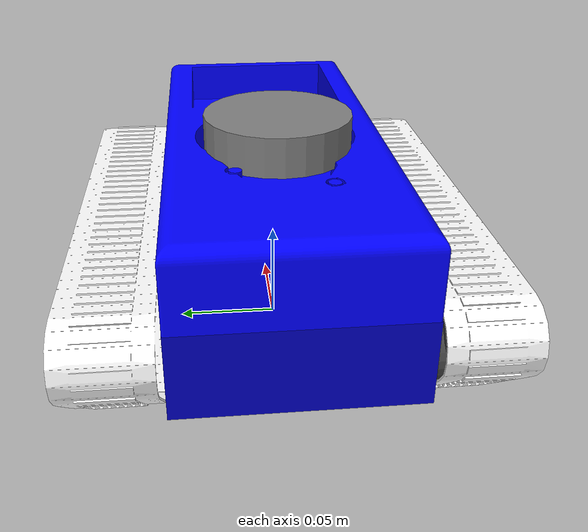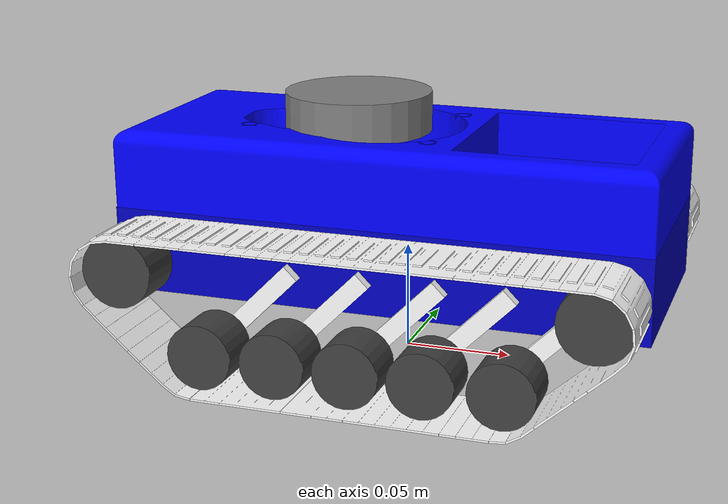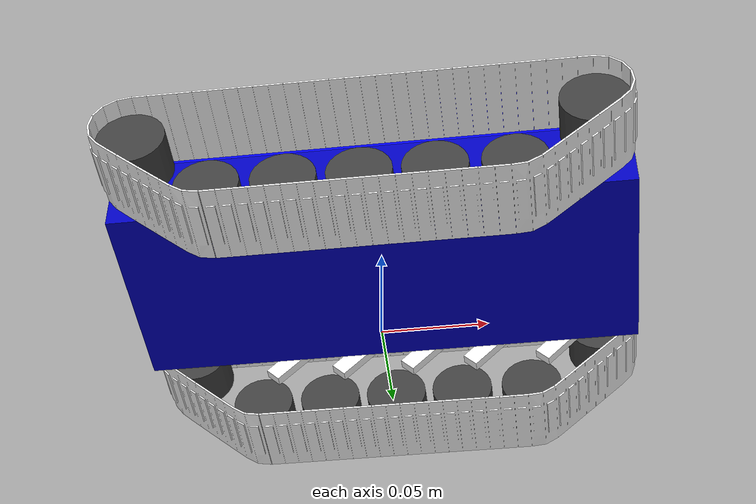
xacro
<?xml version="1.0"?>
<robot name="uwaba_prototype_diffbot" version="1.0"
  xmlns:xacro="http://www.ros.org/wiki/xacro">

  <material name="wheels-grey">
    <color rgba="0.25 0.25 0.25 1.00000" />
  </material>

  <material name="lidar-darkgrey">
    <color rgba="0.5 0.5 0.5 1.00000" />
  </material>

  <material name="base-blue">
    <color rgba="0 0 0.75 1.00000" />
  </material>

  <material name="support-babyblue">
    <color rgba="0.0 0.0 1.0 1.00000" />
  </material>

  <material name="suspension-black">
    <color rgba="1.0 1.0 1.0 1.00000" />
  </material>

  <material name="threads-black">
    <color rgba="1.0 1.0 1.0 0.95000" />
  </material>

  <joint name="Left_sprocket_base_joint" type="continuous">
    <limit lower="-3.14" upper="3.14" effort="0.0000000000" velocity="0.0000000000" />
    <origin rpy="0.0000000000 0.0000000000 0.0000000000"
      xyz="-0.1065520449 0.0762500119 0.0002469979" />
    <parent link="base_link" />
    <child link="Left_wheel_sprocket_link" />
    <axis xyz="0.0000000000 1.0000000000 0.0000000000" />
    <dynamics damping="0.2" />
    <limit effort="100" velocity="1.0" />
  </joint>

  <joint name="Left_suspension.001_base_joint" type="fixed">
    <origin rpy="0.0000000000 0.0000000000 0.0000000000"
      xyz="0.0515604214 0.0552990314 -0.0151900463" />
    <parent link="base_link" />
    <child link="Left_small_wheels_frame.001_link" />
    <axis xyz="0.0000000000 1.0000000000 0.0000000000" />
  </joint>

  <joint name="Left_suspension.002_base_joint" type="fixed">
    <origin rpy="0.0000000000 0.0000000000 0.0000000000"
      xyz="0.0197104206 0.0552989979 -0.0151902959" />
    <parent link="base_link" />
    <child link="Left_small_wheels_frame.002_link" />
    <axis xyz="0.0000000000 1.0000000000 0.0000000000" />
  </joint>

  <joint name="Left_suspension.003_base_joint" type="fixed">
    <origin rpy="0.0000000000 0.0000000000 0.0000000000"
      xyz="-0.0153435795 0.0552989904 -0.0151902996" />
    <parent link="base_link" />
    <child link="Left_small_wheels_frame.003_link" />
    <axis xyz="0.0000000000 1.0000000000 0.0000000000" />
  </joint>

  <joint name="Left_suspension.004_base_joint" type="fixed">
    <origin rpy="0.0000000000 0.0000000000 0.0000000000"
      xyz="-0.0490785828 0.0552990314 -0.0151903071" />
    <parent link="base_link" />
    <child link="Left_small_wheels_frame.004_link" />
    <axis xyz="0.0000000000 1.0000000000 0.0000000000" />
  </joint>

  <joint name="Left_suspension_base_joint" type="fixed">
    <origin rpy="0.0000000000 0.0000000000 0.0000000000"
      xyz="0.0879334183 0.0552990426 -0.0151902996" />
    <parent link="base_link" />
    <child link="Left_small_wheels_frame_link" />
    <axis xyz="0.0000000000 1.0000000000 0.0000000000" />
  </joint>

  <joint name="Left_tracks_base_joint" type="fixed">
    <origin rpy="0.0000000000 0.0000000000 0.0000000000"
      xyz="-0.0000073090 0.0762520012 -0.0125610121" />
    <parent link="base_link" />
    <child link="Left_bumped_treads_link" />
  </joint>

  <joint name="Left_wheel.001_suspension_joint" type="fixed">
    <origin rpy="-0.0000000000 0.0000000000 0.0000000000"
      xyz="-0.0191554390 0.0209509283 -0.0199896954" />
    <parent link="Left_small_wheels_frame.004_link" />
    <child link="Left_wheel.001_link" />
  </joint>

  <joint name="Left_wheel.002_suspension_joint" type="fixed">
    <origin rpy="-0.0000000000 0.0000000000 0.0000000000"
      xyz="-0.0184964389 0.0209509470 -0.0199897066" />
    <parent link="Left_small_wheels_frame.003_link" />
    <child link="Left_wheel.002_link" />
  </joint>

  <joint name="Left_wheel.003_suspension_joint" type="fixed">
    <origin rpy="-0.0000000000 0.0000000000 0.0000000000"
      xyz="-0.0197104495 0.0209509693 -0.0199897159" />
    <parent link="Left_small_wheels_frame.002_link" />
    <child link="Left_wheel.003_link" />
  </joint>

  <joint name="Left_wheel.004_suspension_joint" type="fixed">
    <origin rpy="-0.0000000000 0.0000000000 0.0000000000"
      xyz="-0.0179914646 0.0209509209 -0.0199899562" />
    <parent link="Left_small_wheels_frame.001_link" />
    <child link="Left_wheel.004_link" />
  </joint>

  <joint name="Left_wheel.005_suspension_joint" type="fixed">
    <origin rpy="-0.0000000000 0.0000000000 0.0000000000"
      xyz="-0.0192444250 0.0209509395 -0.0199897159" />
    <parent link="Left_small_wheels_frame_link" />
    <child link="Left_wheel.005_link" />
  </joint>

  <joint name="Left_wheel.006_base_joint" type="fixed">
    <origin rpy="0.0000000000 0.0000000000 0.0000000000"
      xyz="0.1065519945 0.0762500119 0.0002470016" />
    <parent link="base_link" />
    <child link="Left_wheel.006_link" />
  </joint>

  <joint name="Right_sprocket_base_joint" type="continuous">
    <limit lower="-3.14" upper="3.14" effort="0.0000000000" velocity="0.0000000000" />
    <origin rpy="0.0000000000 0.0000000000 0.0000000000"
      xyz="-0.1065520300 -0.0762500215 0.0002470128" />
    <parent link="base_link" />
    <child link="Right_wheel_sprocket_link" />
    <axis xyz="0.0000000000 1.0000000000 0.0000000000" />
    <dynamics damping="0.2" />
    <limit effort="100" velocity="1.0" />
  </joint>

  <joint name="Right_suspension.001_base_joint" type="fixed">
    <origin rpy="0.0000000000 0.0000000000 0.0000000000"
      xyz="0.0515604140 -0.0552989628 -0.0151902884" />
    <parent link="base_link" />
    <child link="Right_small_wheels_frame.001_link" />
    <axis xyz="0.0000000000 1.0000000000 0.0000000000" />
  </joint>

  <joint name="Right_suspension.002_base_joint" type="fixed">
    <origin rpy="0.0000000000 0.0000000000 0.0000000000"
      xyz="0.0197104187 -0.0552990224 -0.0151902996" />
    <parent link="base_link" />
    <child link="Right_small_wheels_frame.002_link" />
    <axis xyz="0.0000000000 1.0000000000 0.0000000000" />
  </joint>

  <joint name="Right_suspension.003_base_joint" type="fixed">
    <origin rpy="0.0000000000 0.0000000000 0.0000000000"
      xyz="-0.0153435786 -0.0552990075 -0.0151903033" />
    <parent link="base_link" />
    <child link="Right_small_wheels_frame.003_link" />
    <axis xyz="0.0000000000 1.0000000000 0.0000000000" />
  </joint>

  <joint name="Right_suspension.004_base_joint" type="fixed">
    <origin rpy="0.0000000000 0.0000000000 0.0000000000"
      xyz="-0.0490785791 -0.0552989665 -0.0151903071" />
    <parent link="base_link" />
    <child link="Right_small_wheels_frame.004_link" />
    <axis xyz="0.0000000000 1.0000000000 0.0000000000" />
  </joint>

  <joint name="Right_suspension_base_joint" type="fixed">
    <origin rpy="0.0000000000 0.0000000000 0.0000000000"
      xyz="0.0879334183 -0.0552989665 -0.0151903033" />
    <parent link="base_link" />
    <child link="Right_small_wheels_frame_link" />
    <axis xyz="0.0000000000 1.0000000000 0.0000000000" />
  </joint>

  <joint name="Right_tracks_base_joint" type="fixed">
    <origin rpy="0.0000000000 0.0000000000 0.0000000000"
      xyz="0.0000440089 -0.0765780109 -0.0125610270" />
    <parent link="base_link" />
    <child link="Right_bumped_treads_link" />
  </joint>

  <joint name="Right_wheel.001_suspension_joint" type="fixed">
    <origin rpy="0.0000000000 0.0000000000 0.0000000000"
      xyz="-0.0191554353 -0.0209510326 -0.0199897029" />
    <parent link="Right_small_wheels_frame.004_link" />
    <child link="Right_wheel.001_link" />
  </joint>

  <joint name="Right_wheel.002_suspension_joint" type="fixed">
    <origin rpy="0.0000000000 0.0000000000 0.0000000000"
      xyz="-0.0184964174 -0.0209510289 -0.0199897103" />
    <parent link="Right_small_wheels_frame.003_link" />
    <child link="Right_wheel.002_link" />
  </joint>

  <joint name="Right_wheel.003_suspension_joint" type="fixed">
    <origin rpy="0.0000000000 0.0000000000 0.0000000000"
      xyz="-0.0197104261 -0.0209509619 -0.0199897196" />
    <parent link="Right_small_wheels_frame.002_link" />
    <child link="Right_wheel.003_link" />
  </joint>

  <joint name="Right_wheel.004_suspension_joint" type="fixed">
    <origin rpy="0.0000000000 0.0000000000 0.0000000000"
      xyz="-0.0179914236 -0.0209510438 -0.0199897178" />
    <parent link="Right_small_wheels_frame.001_link" />
    <child link="Right_wheel.004_link" />
  </joint>

  <joint name="Right_wheel.005_suspension_joint" type="fixed">
    <origin rpy="0.0000000000 0.0000000000 0.0000000000"
      xyz="-0.0192444548 -0.0209510252 -0.0199896898" />
    <parent link="Right_small_wheels_frame_link" />
    <child link="Right_wheel.005_link" />
  </joint>

  <joint name="Right_wheel.006_base_joint" type="fixed">
    <origin rpy="0.0000000000 0.0000000000 0.0000000000"
      xyz="0.1065519945 -0.0762500066 0.0002470054" />
    <parent link="base_link" />
    <child link="Right_wheel.006_link" />
  </joint>

  <joint name="base_footprint_joint" type="fixed">
    <origin rpy="0.0000000000 0.0000000000 0.0000000000"
      xyz="0.0000000177 0.0000000048 0.0524450019" />
    <parent link="base_footprint" />
    <child link="base_link" />
  </joint>

  <joint name="imu_base_joint" type="fixed">
    <origin rpy="0.0000000000 0.0000000000 ${-pi/2}"
      xyz="0.061 -0.004 0.001875" />
      <!-- xyz="0.061 -0.004 0.001875" -->
    <parent link="base_link" />
    <child link="imu_frame" />
  </joint>

  <joint name="laser_frame_base_joint" type="fixed">
    <origin rpy="${pi} 0.0000000000 0.0000000000"
      xyz="-0.024 0.0000000000 0.061" />
      <!-- xyz="-0.0110695819 -0.0000000043 0.0737789795" -->
    <parent link="base_link" />
    <child link="laser_frame" />
  </joint>

  <joint name="support_base_joint" type="fixed">
    <origin rpy="0.0000000000 0.0000000000 0.0000000000"
      xyz="-0.0000000130 -0.0000003647 0.0193747655" />
    <parent link="base_link" />
    <child link="support_link" />
  </joint>

  <link name="Left_bumped_treads_link">
    <collision name="Left_bumped_treads_collision">
      <origin rpy="0.0000000000 0.0000000000 0.0000000000"
        xyz="0.0000002912 -0.0000000075 0.0000000112" />
      <geometry>
        <mesh filename="package://uwaba_prototype_description/meshes/dae/right.tracks.dae"
          scale="1.0000000000 1.0000000000 1.0000000000" />
      </geometry>
    </collision>

    <visual>
      <material name="threads-black" />
      <origin rpy="0.0000000000 0.0000000000 0.0000000000"
        xyz="0.0000002912 -0.0000000075 0.0000000000" />
      <geometry>
        <mesh filename="package://uwaba_prototype_description/meshes/dae/right.tracks.dae"
          scale="1.0000000000 1.0000000000 1.0000000000" />
      </geometry>
    </visual>

  </link>

  <link name="Left_small_wheels_frame.001_link">
    <collision name="Left_small_wheels_frame.001_collision">
      <origin rpy="0.0000000000 -0.7853982406 0.0000000000"
        xyz="-0.0084856115 0.0000000000 -0.0084856041" />
      <geometry>
        <box size="0.0362100005 0.0048000002 0.0085000005" />
      </geometry>
    </collision>

    <inertial>
      <inertia ixx="0.0000029781" ixy="-0.0000000000" ixz="-0.0000025811" iyy="0.0000057642"
        iyz="-0.0000000000" izz="0.0000029781" />
      <origin rpy="0.0000000000 0.0000000000 0.0000000000"
        xyz="-0.0000000075 -0.0000000037 0.0000000000" />
      <mass value="0.0500000007" />
    </inertial>

    <visual>
      <material name="suspension-black" />
      <origin rpy="0.0000000000 -0.7853982406 0.0000000000"
        xyz="-0.0000000075 -0.0000000037 0.0000000000" />
      <geometry>
        <box size="0.0362099968 0.0048000002 0.0084999995" />
      </geometry>
    </visual>

  </link>

  <link name="Left_small_wheels_frame.002_link">
    <collision name="Left_small_wheels_frame.002_collision">
      <origin rpy="-0.0000000000 -0.7853982406 0.0000000000"
        xyz="-0.0084856041 0.0000000000 -0.0084856078" />
      <geometry>
        <box size="0.0362099968 0.0048000016 0.0085000005" />
      </geometry>
    </collision>

    <inertial>
      <inertia ixx="0.0000029781" ixy="-0.0000000000" ixz="-0.0000025811" iyy="0.0000057642"
        iyz="-0.0000000000" izz="0.0000029781" />
      <origin rpy="0.0000000000 0.0000000000 0.0000000000"
        xyz="0.0000000000 0.0000000000 0.0000000000" />
      <mass value="0.0500000007" />
    </inertial>

    <visual>
      <material name="suspension-black" />
      <origin rpy="-0.0000000000 -0.7853982406 0.0000000000"
        xyz="0.0000000000 0.0000000000 0.0000000000" />
      <geometry>
        <box size="0.0362099968 0.0048000021 0.0085000005" />
      </geometry>
    </visual>

  </link>

  <link name="Left_small_wheels_frame.003_link">
    <collision name="Left_small_wheels_frame.003_collision">
      <origin rpy="-0.0000000000 -0.7853982406 0.0000000000"
        xyz="-0.0084852800 0.0000000075 -0.0084852818" />
      <geometry>
        <box size="0.0362099968 0.0047999993 0.0085000005" />
      </geometry>
    </collision>

    <inertial>
      <inertia ixx="0.0000029781" ixy="-0.0000000000" ixz="-0.0000025811" iyy="0.0000057642"
        iyz="-0.0000000000" izz="0.0000029781" />
      <origin rpy="0.0000000000 0.0000000000 0.0000000000"
        xyz="0.0000000000 0.0000000000 0.0000000000" />
      <mass value="0.0500000007" />
    </inertial>

    <visual>
      <material name="suspension-black" />
      <origin rpy="-0.0000000000 -0.7853982406 0.0000000000"
        xyz="0.0000000000 0.0000000000 0.0000000000" />
      <geometry>
        <box size="0.0362099931 0.0047999993 0.0084999995" />
      </geometry>
    </visual>

  </link>

  <link name="Left_small_wheels_frame.004_link">
    <collision name="Left_small_wheels_frame.004_collision">
      <origin rpy="-0.0000000000 -0.7853982406 -0.0000000000"
        xyz="-0.0084852464 0.0000000037 -0.0084852353" />
      <geometry>
        <box size="0.0362100005 0.0048000002 0.0085000005" />
      </geometry>
    </collision>

    <inertial>
      <inertia ixx="0.0000029781" ixy="0.0000000000" ixz="-0.0000025811" iyy="0.0000057642"
        iyz="0.0000000000" izz="0.0000029781" />
      <origin rpy="0.0000000000 0.0000000000 0.0000000000"
        xyz="-0.0000000075 0.0000000075 0.0000000037" />
      <mass value="0.0500000007" />
    </inertial>

    <visual>
      <material name="suspension-black" />
      <origin rpy="-0.0000000000 -0.7853982406 -0.0000000000"
        xyz="-0.0000000075 0.0000000075 0.0000000037" />
      <geometry>
        <box size="0.0362100005 0.0048000002 0.0085000005" />
      </geometry>
    </visual>

  </link>

  <link name="Left_small_wheels_frame_link">
    <collision name="Left_small_wheels_frame_collision">
      <origin rpy="0.0000000000 -0.7853982406 0.0000000000"
        xyz="-0.0084855407 0.0000000000 -0.0084855407" />
      <geometry>
        <box size="0.0362100005 0.0048000012 0.0085000005" />
      </geometry>
    </collision>

    <inertial>
      <inertia ixx="0.0000029781" ixy="-0.0000000000" ixz="-0.0000025811" iyy="0.0000057642"
        iyz="-0.0000000000" izz="0.0000029781" />
      <origin rpy="0.0000000000 0.0000000000 0.0000000000"
        xyz="0.0000000000 0.0000000000 0.0000000000" />
      <mass value="0.0500000007" />
    </inertial>

    <visual>
      <material name="suspension-black" />
      <origin rpy="0.0000000000 -0.7853982406 0.0000000000"
        xyz="0.0000000000 0.0000000000 0.0000000000" />
      <geometry>
        <box size="0.0362100005 0.0048000012 0.0085000005" />
      </geometry>
    </visual>

  </link>

  <link name="Left_wheel.001_link">
    <collision name="Left_wheel.001_collision">
      <origin rpy="1.5707962513 0.0000000000 0.0000000000"
        xyz="0.0000000075 0.0000000000 -0.0000000037" />
      <geometry>
        <cylinder radius="0.0149999997" length="0.0219299998" />
      </geometry>
    </collision>

    <inertial>
      <inertia ixx="0.0000096327" ixy="-0.0000000000" ixz="0.0000000000" iyy="0.0000112500"
        iyz="-0.0000000000" izz="0.0000096327" />
      <origin rpy="0.0000000000 0.0000000000 0.0000000000"
        xyz="0.0000000075 0.0000000000 -0.0000000056" />
      <mass value="0.1000000015" />
    </inertial>

    <visual>
      <material name="wheels-grey" />
      <origin rpy="1.5707962513 0.0000000000 0.0000000000"
        xyz="0.0000000075 0.0000000000 -0.0000000056" />
      <geometry>
        <cylinder radius="0.0149999978" length="0.0219299998" />
      </geometry>
    </visual>

  </link>

  <link name="Left_wheel.002_link">
    <collision name="Left_wheel.002_collision">
      <origin rpy="1.5707962513 0.0000000000 0.0000000000"
        xyz="0.0000000000 0.0000000149 0.0000000019" />
      <geometry>
        <cylinder radius="0.0149999969" length="0.0219299998" />
      </geometry>
    </collision>

    <inertial>
      <inertia ixx="0.0000096327" ixy="-0.0000000000" ixz="0.0000000000" iyy="0.0000112500"
        iyz="-0.0000000000" izz="0.0000096327" />
      <origin rpy="0.0000000000 0.0000000000 0.0000000000"
        xyz="0.0000000000 0.0000000149 0.0000000019" />
      <mass value="0.1000000015" />
    </inertial>

    <visual>
      <material name="wheels-grey" />
      <origin rpy="1.5707962513 0.0000000000 0.0000000000"
        xyz="0.0000000000 0.0000000149 0.0000000019" />
      <geometry>
        <cylinder radius="0.0149999950" length="0.0219299998" />
      </geometry>
    </visual>

  </link>

  <link name="Left_wheel.003_link">
    <collision name="Left_wheel.003_collision">
      <origin rpy="1.5707962513 0.0000000000 0.0000000000"
        xyz="0.0000000000 -0.0000000075 0.0000000019" />
      <geometry>
        <cylinder radius="0.0149999987" length="0.0219299998" />
      </geometry>
    </collision>

    <inertial>
      <inertia ixx="0.0000096327" ixy="-0.0000000000" ixz="-0.0000000000" iyy="0.0000112500"
        iyz="-0.0000000000" izz="0.0000096327" />
      <origin rpy="0.0000000000 0.0000000000 0.0000000000"
        xyz="0.0000000000 -0.0000000075 0.0000000019" />
      <mass value="0.1000000015" />
    </inertial>

    <visual>
      <material name="wheels-grey" />
      <origin rpy="1.5707962513 0.0000000000 0.0000000000"
        xyz="0.0000000000 -0.0000000075 0.0000000019" />
      <geometry>
        <cylinder radius="0.0149999987" length="0.0219300017" />
      </geometry>
    </visual>

  </link>

  <link name="Left_wheel.004_link">
    <collision name="Left_wheel.004_collision">
      <origin rpy="1.5707962513 0.0000000000 0.0000000000"
        xyz="-0.0000000037 0.0000000075 0.0000000019" />
      <geometry>
        <cylinder radius="0.0150000006" length="0.0219299998" />
      </geometry>
    </collision>

    <inertial>
      <inertia ixx="0.0000096327" ixy="-0.0000000000" ixz="-0.0000000000" iyy="0.0000112500"
        iyz="-0.0000000000" izz="0.0000096327" />
      <origin rpy="0.0000000000 0.0000000000 0.0000000000"
        xyz="-0.0000000037 0.0000000075 0.0000000019" />
      <mass value="0.1000000015" />
    </inertial>

    <visual>
      <material name="wheels-grey" />
      <origin rpy="1.5707962513 0.0000000000 0.0000000000"
        xyz="-0.0000000037 0.0000000075 0.0000000019" />
      <geometry>
        <cylinder radius="0.0149999987" length="0.0219299998" />
      </geometry>
    </visual>

  </link>

  <link name="Left_wheel.005_link">
    <collision name="Left_wheel.005_collision">
      <origin rpy="1.5707962513 0.0000000000 0.0000000000"
        xyz="0.0000000000 0.0000000075 0.0000000019" />
      <geometry>
        <cylinder radius="0.0150000015" length="0.0219299998" />
      </geometry>
    </collision>

    <inertial>
      <inertia ixx="0.0000096327" ixy="-0.0000000000" ixz="-0.0000000000" iyy="0.0000112500"
        iyz="-0.0000000000" izz="0.0000096327" />
      <origin rpy="0.0000000000 0.0000000000 0.0000000000"
        xyz="0.0000000000 0.0000000075 0.0000000019" />
      <mass value="0.1000000015" />
    </inertial>

    <visual>
      <material name="wheels-grey" />
      <origin rpy="1.5707962513 0.0000000000 0.0000000000"
        xyz="0.0000000000 0.0000000075 0.0000000019" />
      <geometry>
        <cylinder radius="0.0150000025" length="0.0219300017" />
      </geometry>
    </visual>

  </link>

  <link name="Left_wheel.006_link">
    <collision name="Left_wheel.006_collision">
      <origin rpy="1.5707962513 0.0000000000 0.0000000000"
        xyz="-0.0000000075 0.0000000000 -0.0000000037" />
      <geometry>
        <cylinder radius="0.0165" length="0.0219299998" />
      </geometry>
    </collision>

    <inertial>
      <inertia ixx="0.0000104880" ixy="0.0000000000" ixz="0.0000000000" iyy="0.0000129605"
        iyz="-0.0000000000" izz="0.0000104880" />
      <origin rpy="0.0000000000 0.0000000000 0.0000000000"
        xyz="-0.0000000075 0.0000000000 -0.0000000037" />
      <mass value="0.1000000015" />
    </inertial>

    <visual>
      <material name="wheels-grey" />
      <origin rpy="1.5707962513 0.0000000000 0.0000000000"
        xyz="-0.0000000075 0.0000000000 -0.0000000037" />
      <geometry>
        <cylinder radius="0.0165" length="0.0219299980" />
      </geometry>
    </visual>

  </link>

  <link name="Left_wheel_sprocket_link">
    <collision name="Left_wheel_sprocket_collision">
      <origin rpy="1.5707962513 0.0000000000 0.0000000000"
        xyz="0.0000000149 0.0000000000 -0.0000000075" />
      <geometry>
        <cylinder radius="0.0165" length="0.0219299998" />
      </geometry>
    </collision>

    <inertial>
      <inertia ixx="0.0000104880" ixy="0.0000000000" ixz="0.0000000000" iyy="0.0000129605"
        iyz="-0.0000000000" izz="0.0000104880" />
      <origin rpy="0.0000000000 0.0000000000 0.0000000000"
        xyz="0.0000000149 0.0000000000 -0.0000000075" />
      <mass value="0.1000000015" />
    </inertial>

    <visual>
      <material name="wheels-grey" />
      <origin rpy="1.5707962513 0.0000000000 0.0000000000"
        xyz="0.0000000149 0.0000000000 -0.0000000075" />
      <geometry>
        <cylinder radius="0.0165" length="0.0219299980" />
      </geometry>
    </visual>

  </link>

  <link name="Right_bumped_treads_link">
    <collision name="Right_bumped_treads_collision">
      <origin rpy="0.0000000000 0.0000000000 0.0000000000"
        xyz="-0.0000000266 0.0000000075 0.0000000261" />
      <geometry>
        <mesh filename="package://uwaba_prototype_description/meshes/dae/left.tracks.dae"
          scale="1.0000000000 1.0000000000 1.0000000000" />
      </geometry>
    </collision>

    <visual>
      <material name="threads-black" />
      <origin rpy="0.0000000000 0.0000000000 0.0000000000"
        xyz="-0.0000000000 0.0000000000 0.0000000000" />
      <geometry>
        <mesh filename="package://uwaba_prototype_description/meshes/dae/left.tracks.dae"
          scale="1.0000000000 1.0000000000 1.0000000000" />
      </geometry>
    </visual>

  </link>

  <link name="Right_small_wheels_frame.001_link">
    <collision name="Right_small_wheels_frame.001_collision">
      <origin rpy="-0.0000000000 -0.7853982406 0.0000000000"
        xyz="-0.0084855929 -0.0000000075 -0.0084855966" />
      <geometry>
        <box size="0.0362099968 0.0048000072 0.0085000005" />
      </geometry>
    </collision>

    <inertial>
      <inertia ixx="0.0000029781" ixy="-0.0000000000" ixz="-0.0000025811" iyy="0.0000057642"
        iyz="-0.0000000000" izz="0.0000029781" />
      <origin rpy="0.0000000000 0.0000000000 0.0000000000"
        xyz="0.0000000000 -0.0000000037 0.0000000037" />
      <mass value="0.0500000007" />
    </inertial>

    <visual>
      <material name="suspension-black" />
      <origin rpy="-0.0000000000 -0.7853982406 0.0000000000"
        xyz="0.0000000000 -0.0000000037 0.0000000037" />
      <geometry>
        <box size="0.0362099968 0.0048000072 0.0085000005" />
      </geometry>
    </visual>

  </link>

  <link name="Right_small_wheels_frame.002_link">
    <collision name="Right_small_wheels_frame.002_collision">
      <origin rpy="0.0000000000 -0.7853982406 0.0000000000"
        xyz="-0.0084856004 -0.0000000075 -0.0084856041" />
      <geometry>
        <box size="0.0362100005 0.0048000016 0.0085000005" />
      </geometry>
    </collision>

    <inertial>
      <inertia ixx="0.0000029781" ixy="-0.0000000000" ixz="-0.0000025811" iyy="0.0000057642"
        iyz="-0.0000000000" izz="0.0000029781" />
      <origin rpy="0.0000000000 0.0000000000 0.0000000000"
        xyz="0.0000000019 -0.0000000112 0.0000000000" />
      <mass value="0.0500000007" />
    </inertial>

    <visual>
      <material name="suspension-black" />
      <origin rpy="0.0000000000 -0.7853982406 0.0000000000"
        xyz="0.0000000019 -0.0000000112 0.0000000000" />
      <geometry>
        <box size="0.0362100005 0.0048000021 0.0085000005" />
      </geometry>
    </visual>

  </link>

  <link name="Right_small_wheels_frame.003_link">
    <collision name="Right_small_wheels_frame.003_collision">
      <origin rpy="-0.0000000000 -0.7853982406 0.0000000000"
        xyz="-0.0084855026 0.0000000000 -0.0084855054" />
      <geometry>
        <box size="0.0362100005 0.0047999998 0.0085000005" />
      </geometry>
    </collision>

    <inertial>
      <inertia ixx="0.0000029781" ixy="-0.0000000000" ixz="-0.0000025811" iyy="0.0000057642"
        iyz="-0.0000000000" izz="0.0000029781" />
      <origin rpy="0.0000000000 0.0000000000 0.0000000000"
        xyz="0.0000000009 0.0000000037 -0.0000000037" />
      <mass value="0.0500000007" />
    </inertial>

    <visual>
      <material name="suspension-black" />
      <origin rpy="-0.0000000000 -0.7853982406 0.0000000000"
        xyz="0.0000000009 0.0000000037 -0.0000000037" />
      <geometry>
        <box size="0.0362100005 0.0047999998 0.0085000005" />
      </geometry>
    </visual>

  </link>

  <link name="Right_small_wheels_frame.004_link">
    <collision name="Right_small_wheels_frame.004_collision">
      <origin rpy="-0.0000000000 -0.7853982406 -0.0000000000"
        xyz="-0.0084852390 0.0000000000 -0.0084852353" />
      <geometry>
        <box size="0.0362100005 0.0048000002 0.0085000005" />
      </geometry>
    </collision>

    <inertial>
      <inertia ixx="0.0000029781" ixy="0.0000000000" ixz="-0.0000025811" iyy="0.0000057642"
        iyz="0.0000000000" izz="0.0000029781" />
      <origin rpy="0.0000000000 0.0000000000 0.0000000000"
        xyz="-0.0000000037 0.0000000000 0.0000000000" />
      <mass value="0.0500000007" />
    </inertial>

    <visual>
      <material name="suspension-black" />
      <origin rpy="-0.0000000000 -0.7853982406 -0.0000000000"
        xyz="-0.0000000037 0.0000000000 0.0000000000" />
      <geometry>
        <box size="0.0362100005 0.0048000002 0.0085000005" />
      </geometry>
    </visual>

  </link>

  <link name="Right_small_wheels_frame_link">
    <collision name="Right_small_wheels_frame_collision">
      <origin rpy="-0.0000000000 -0.7853982406 0.0000000000"
        xyz="-0.0084855556 0.0000000037 -0.0084855426" />
      <geometry>
        <box size="0.0362100005 0.0048000007 0.0085000005" />
      </geometry>
    </collision>

    <inertial>
      <inertia ixx="0.0000029781" ixy="-0.0000000000" ixz="-0.0000025811" iyy="0.0000057642"
        iyz="-0.0000000000" izz="0.0000029781" />
      <origin rpy="0.0000000000 0.0000000000 0.0000000000"
        xyz="-0.0000000075 0.0000000000 0.0000000000" />
      <mass value="0.0500000007" />
    </inertial>

    <visual>
      <material name="suspension-black" />
      <origin rpy="-0.0000000000 -0.7853982406 0.0000000000"
        xyz="-0.0000000075 0.0000000000 0.0000000000" />
      <geometry>
        <box size="0.0362100005 0.0048000007 0.0085000005" />
      </geometry>
    </visual>

  </link>

  <link name="Right_wheel.001_link">
    <collision name="Right_wheel.001_collision">
      <origin rpy="-1.5707960129 -0.0000000000 0.0000000000"
        xyz="0.0000000000 0.0000000000 -0.0000000019" />
      <geometry>
        <cylinder radius="0.0149999997" length="0.0219299980" />
      </geometry>
    </collision>

    <inertial>
      <inertia ixx="0.0000096327" ixy="-0.0000000000" ixz="-0.0000000000" iyy="0.0000112500"
        iyz="0.0000000000" izz="0.0000096327" />
      <origin rpy="0.0000000000 0.0000000000 0.0000000000"
        xyz="0.0000000000 0.0000000000 -0.0000000019" />
      <mass value="0.1000000015" />
    </inertial>

    <visual>
      <material name="wheels-grey" />
      <origin rpy="-1.5707960129 -0.0000000000 0.0000000000"
        xyz="0.0000000000 0.0000000000 -0.0000000019" />
      <geometry>
        <cylinder radius="0.0149999997" length="0.0219299980" />
      </geometry>
    </visual>

  </link>

  <link name="Right_wheel.002_link">
    <collision name="Right_wheel.002_collision">
      <origin rpy="-1.5707960129 0.0000000000 0.0000000000"
        xyz="0.0000000037 0.0000000000 -0.0000000019" />
      <geometry>
        <cylinder radius="0.0150000006" length="0.0219299980" />
      </geometry>
    </collision>

    <inertial>
      <inertia ixx="0.0000096327" ixy="-0.0000000000" ixz="-0.0000000000" iyy="0.0000112500"
        iyz="0.0000000000" izz="0.0000096327" />
      <origin rpy="0.0000000000 0.0000000000 0.0000000000"
        xyz="0.0000000037 0.0000000000 -0.0000000019" />
      <mass value="0.1000000015" />
    </inertial>

    <visual>
      <material name="wheels-grey" />
      <origin rpy="-1.5707960129 0.0000000000 0.0000000000"
        xyz="0.0000000037 0.0000000000 -0.0000000019" />
      <geometry>
        <cylinder radius="0.0150000006" length="0.0219299980" />
      </geometry>
    </visual>

  </link>

  <link name="Right_wheel.003_link">
    <collision name="Right_wheel.003_collision">
      <origin rpy="-1.5707960129 -0.0000000000 0.0000000000"
        xyz="-0.0000000009 0.0000000000 0.0000000000" />
      <geometry>
        <cylinder radius="0.0149999997" length="0.0219299998" />
      </geometry>
    </collision>

    <inertial>
      <inertia ixx="0.0000096327" ixy="-0.0000000000" ixz="-0.0000000000" iyy="0.0000112500"
        iyz="0.0000000000" izz="0.0000096327" />
      <origin rpy="0.0000000000 0.0000000000 0.0000000000"
        xyz="-0.0000000000 0.0000000000 0.0000000000" />
      <mass value="0.1000000015" />
    </inertial>

    <visual>
      <material name="wheels-grey" />
      <origin rpy="-1.5707960129 -0.0000000000 0.0000000000"
        xyz="-0.0000000000 0.0000000000 0.0000000000" />
      <geometry>
        <cylinder radius="0.0149999997" length="0.0219299998" />
      </geometry>
    </visual>

  </link>

  <link name="Right_wheel.004_link">
    <collision name="Right_wheel.004_collision">
      <origin rpy="-1.5707960129 -0.0000000000 0.0000000000"
        xyz="0.0000000000 0.0000000149 0.0000000000" />
      <geometry>
        <cylinder radius="0.0150000006" length="0.0219299980" />
      </geometry>
    </collision>

    <inertial>
      <inertia ixx="0.0000096327" ixy="0.0000000000" ixz="0.0000000000" iyy="0.0000112500"
        iyz="0.0000000000" izz="0.0000096327" />
      <origin rpy="0.0000000000 0.0000000000 0.0000000000"
        xyz="0.0000000000 0.0000000149 0.0000000000" />
      <mass value="0.1000000015" />
    </inertial>

    <visual>
      <material name="wheels-grey" />
      <origin rpy="-1.5707960129 -0.0000000000 0.0000000000"
        xyz="0.0000000000 0.0000000149 0.0000000000" />
      <geometry>
        <cylinder radius="0.0150000006" length="0.0219299980" />
      </geometry>
    </visual>

  </link>

  <link name="Right_wheel.005_link">
    <collision name="Right_wheel.005_collision">
      <origin rpy="-1.5707960129 -0.0000000000 0.0000000000"
        xyz="-0.0000000149 0.0000000075 0.0000000000" />
      <geometry>
        <cylinder radius="0.0150000006" length="0.0219299980" />
      </geometry>
    </collision>

    <inertial>
      <inertia ixx="0.0000096327" ixy="-0.0000000000" ixz="-0.0000000000" iyy="0.0000112500"
        iyz="0.0000000000" izz="0.0000096327" />
      <origin rpy="0.0000000000 0.0000000000 0.0000000000"
        xyz="-0.0000000149 0.0000000075 0.0000000000" />
      <mass value="0.1000000015" />
    </inertial>

    <visual>
      <material name="wheels-grey" />
      <origin rpy="-1.5707960129 -0.0000000000 0.0000000000"
        xyz="-0.0000000149 0.0000000075 0.0000000000" />
      <geometry>
        <cylinder radius="0.0150000006" length="0.0219299980" />
      </geometry>
    </visual>

  </link>

  <link name="Right_wheel.006_link">
    <collision name="Right_wheel.006_collision">
      <origin rpy="-1.5707956553 0.0000000000 0.0000000000"
        xyz="0.0000000000 0.0000000000 0.0000000000" />
      <geometry>
        <cylinder radius="0.0165" length="0.0219300017" />
      </geometry>
    </collision>

    <inertial>
      <inertia ixx="0.0000104880" ixy="0.0000000000" ixz="0.0000000000" iyy="0.0000129605"
        iyz="0.0000000000" izz="0.0000104880" />
      <origin rpy="0.0000000000 0.0000000000 0.0000000000"
        xyz="0.0000000000 0.0000000000 0.0000000000" />
      <mass value="0.1000000015" />
    </inertial>

    <visual>
      <material name="wheels-grey" />
      <origin rpy="-1.5707956553 0.0000000000 0.0000000000"
        xyz="0.0000000000 0.0000000000 0.0000000000" />
      <geometry>
        <cylinder radius="0.0165" length="0.0219300017" />
      </geometry>
    </visual>

  </link>

  <link name="Right_wheel_sprocket_link">
    <collision name="Right_wheel_sprocket_collision">
      <origin rpy="-1.5707956553 0.0000000000 0.0000000000"
        xyz="0.0000000075 0.0000000075 0.0000000000" />
      <geometry>
        <cylinder radius="0.0165" length="0.0219300017" />
      </geometry>
    </collision>

    <inertial>
      <inertia ixx="0.0000104880" ixy="0.0000000000" ixz="0.0000000000" iyy="0.0000129605"
        iyz="0.0000000000" izz="0.0000104880" />
      <origin rpy="0.0000000000 0.0000000000 0.0000000000"
        xyz="0.0000000075 0.0000000075 0.0000000000" />
      <mass value="0.1000000015" />
    </inertial>

    <visual>
      <material name="wheels-grey" />
      <origin rpy="-1.5707956553 0.0000000000 0.0000000000"
        xyz="0.0000000075 0.0000000075 0.0000000000" />
      <geometry>
        <cylinder radius="0.0165" length="0.0219299998" />
      </geometry>
    </visual>

  </link>

  <link name="base_footprint" />

  <link name="imu_frame">
    <collision name="imu_collision">
      <origin rpy="0.0000000000 0.0000000000 0.0000000000"
        xyz="0 0 0" />
      <geometry>
        <box size="0.001 0.002 0.001" />
      </geometry>
    </collision>

    <visual>
      <origin rpy="0.0000000000 0.0000000000 0.0000000000"
        xyz="0 0 0" />
      <geometry>
        <box size="0.001 0.002 0.001" />
      </geometry>
    </visual>

  </link>

  <link name="base_link">
    <collision name="base_collision">
      <origin rpy="0.0000000000 0.0000000000 0.0000000000"
        xyz="0.0000000000 0.0000000000 0.0000000000" />
      <geometry>
        <box size="0.2480000407 0.1058000177 0.0387500003" />
      </geometry>
    </collision>

    <inertial>
      <inertia ixx="0.0013753140" ixy="0.0000000000" ixz="0.0000000000" iyy="0.0068256045"
        iyz="0.0000000000" izz="0.0078755800" />
      <origin rpy="0.0000000000 0.0000000000 0.0000000000"
        xyz="0.0000000000 0.0000000000 0.0000000000" />
      <mass value="1.2999999523" />
    </inertial>

    <visual>
      <material name="base-blue" />
      <origin rpy="0.0000000000 0.0000000000 0.0000000000"
        xyz="0.0000000000 0.0000000000 0.0000000000" />
      <geometry>
        <box size="0.2480000407 0.1058000177 0.0387500003" />
      </geometry>
    </visual>

  </link>

  <link name="laser_frame">
    <collision name="laser_frame_collision">
      <origin rpy="0.0000000000 0.0000000000 0.0000000000"
        xyz="0.0000000000 -0.0000000000 0.0000000000" />
      <geometry>
        <cylinder radius="0.0341599993" length="0.0183099993" />
      </geometry>
    </collision>

    <inertial>
      <inertia ixx="0.0000958993" ixy="0.0000000000" ixz="0.0000000000" iyy="0.0000958993"
        iyz="0.0000000000" izz="0.0001750358" />
      <origin rpy="0.0000000000 0.0000000000 0.0000000000"
        xyz="0.0000000000 -0.0000000000 0.0000000000" />
      <mass value="0.3000000119" />
    </inertial>

    <visual>
      <material name="lidar-darkgrey" />
      <origin rpy="0.0000000000 0.0000000000 0.0000000000"
        xyz="0.0000000000 -0.0000000000 0.0000000000" />
      <geometry>
        <cylinder radius="0.0341599993" length="0.0183099993" />
      </geometry>
    </visual>

  </link>

  <link name="support_link">
    <collision name="support_collision">
      <origin rpy="0.0000000000 0.0000000000 0.0000000000"
        xyz="-0.0000000048 0.0000003599 0.0000002310" />
      <geometry>
        <mesh filename="package://uwaba_prototype_description/meshes/dae/Cube.002.dae"
          scale="0.9999999404 0.9999999404 0.9999898076" />
      </geometry>
    </collision>

    <visual>
      <material name="support-babyblue" />
      <origin rpy="0.0000000000 0.0000000000 0.0000000000"
        xyz="0.0000000000 0.0000000000 -0.0000000075" />
      <geometry>
        <mesh filename="package://uwaba_prototype_description/meshes/dae/Cube.002.dae"
          scale="0.9999999404 0.9999999404 0.9999898076" />
      </geometry>
    </visual>

  </link>

</robot>
